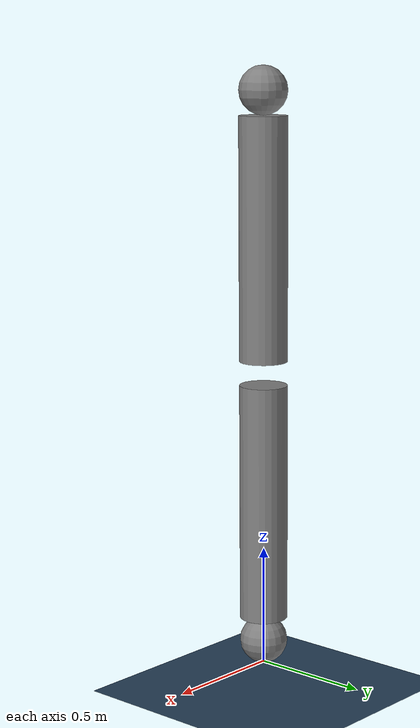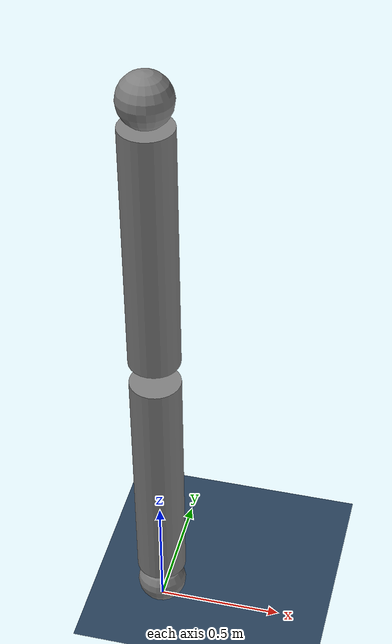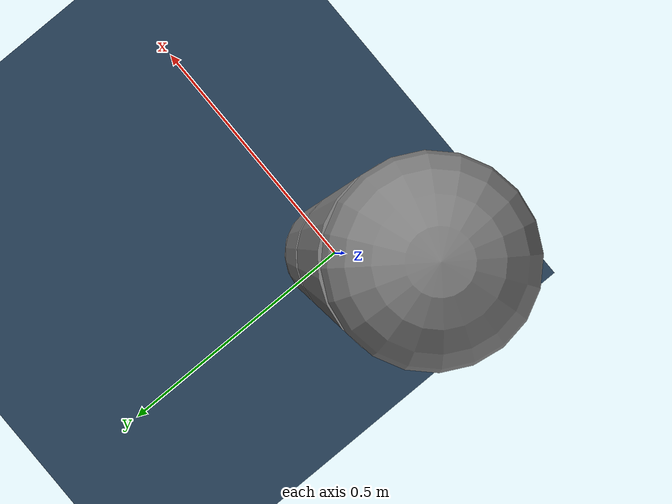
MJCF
<mujoco model="planar_2dof">
  <compiler angle="radian"/>

  <option gravity="0 0 0" integrator="implicitfast" timestep="0.01"/>

  <worldbody>
    <geom size="0.1" pos="0 0 0.1"/>
    <body name="link1" pos="0 0 0.1">
      <inertial pos="0 0 0.5" mass="1" diaginertia="0.0858 0.0858 0.005"/>
      <joint name="joint1" pos="0 0 0" axis="1 0 0" range="-2.8973 2.8973" actuatorfrcrange="-87 87"/>
      <geom size="0.1 0.5" pos="0 0 0.6" type="cylinder"/>
      <body name="link2" pos="0 0 1.1">
        <inertial pos="0 0 0.50007" mass="1.0001" diaginertia="0.0858997 0.0858997 0.00505"/>
        <joint name="joint2" pos="0 0 0" axis="1 0 0" range="-1.7628 1.7628" actuatorfrcrange="-87 87"/>
        <geom size="0.1 0.5" pos="0 0 0.6" type="cylinder"/>
        <geom size="0.1" pos="0 0 1.2"/>
      </body>
    </body>
  </worldbody>

  <visual>
    <headlight diffuse="0.6 0.6 0.6" ambient="0.3 0.3 0.3" specular="0 0 0"/>
    <rgba haze="0.15 0.25 0.35 1"/>
    <global azimuth="120" elevation="-20"/>
  </visual>

  <asset>
    <texture type="skybox" builtin="gradient" rgb1="0.3 0.5 0.7" rgb2="0 0 0" width="512" height="3072"/>
    <texture type="2d" name="groundplane" builtin="checker" mark="edge" rgb1="0.2 0.3 0.4" rgb2="0.1 0.2 0.3"
      markrgb="0.8 0.8 0.8" width="300" height="300"/>
    <material name="groundplane" texture="groundplane" texuniform="true" texrepeat="5 5" reflectance="0.2"/>
  </asset>

  <worldbody>
    <light pos="0 0 1.5" dir="0 0 -1" directional="true"/>
    <geom name="floor" size="0 0 0.05" type="plane" material="groundplane"/>
  </worldbody>

  <actuator>
    <velocity joint="joint1" ctrlrange="-2.0 2.0" kv='10' ctrllimited="true" />
    <velocity joint="joint2" ctrlrange="-2.0 2.0" kv='10' ctrllimited="true" />
  </actuator>
</mujoco>
